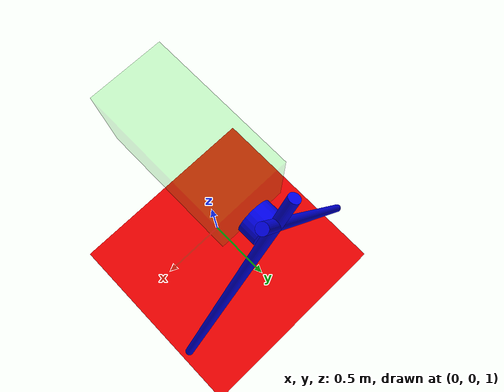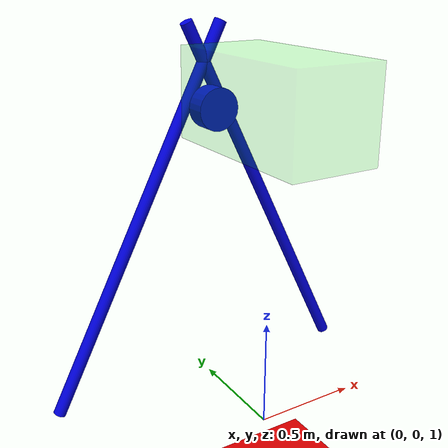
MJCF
<mujoco model='xz'>
    <option timestep="0.001" integrator="RK4" gravity='0 0 0'>
		<flag sensornoise="enable" contact="disable" energy="enable"/>
	</option>
    <worldbody>
    <light diffuse=".5 .5 .5" pos="0 0 3" dir="0 0 -1"/>
		<geom type="plane" size="1 1 0.1" rgba=".9 0 0 1"/>
		<body name='base' pos="0 0 2.5" euler="0 0 0">
			<geom type="box" size="0.2 0.4 0.2" rgba="0 .9 0 0.2" />
			<inertial mass="1" pos="0 0 0" diaginertia="0.1 0.1 0.1"/>
			<body name="zc" pos="0 0.46 -0.1" euler="-90 0 0">
				<joint name="zc" type="hinge" pos="0 0 0" axis="0 0 1" />
				<geom type="cylinder" size="0.1 0.05" rgba="0 0 0.9 1" />
				<inertial mass="1" pos="0 0 0" diaginertia="0.1 0.1 0.1"/>
			</body>
            <body pos="0 0.55 0.1" euler="0 0 0">
				<inertial mass="0.1" pos="0 0 0" diaginertia="0.1 0.1 0.1"/>
                <joint name="pin1_r" type="hinge" pos="0 0 0" axis="0 1 0"/>
                <body name="pin1" pos="0 0 0" euler="0 26.57 0">
                    <joint name="pin1_z" type="slide" pos="0 0 0" axis="0 0 1" />
                    <geom type="cylinder" pos="0 0 -0.8" size="0.03 1" rgba="0 0 0.9 1" />
                    <inertial mass="1" pos="0 0 0" diaginertia="0.1 0.1 0.1"/>
                </body>
            </body>
            <body pos="0 0.55 0.1" euler="0 0 0">
				<inertial mass="0.1" pos="0 0 0" diaginertia="0.1 0.1 0.1"/>
                <joint name="pin2_r" type="hinge" pos="0 0 0" axis="0 1 0"/>
                <body name="pin2" pos="0 0 0" euler="0 -26.57 0">
                    <joint name="pin2_z" type="slide" pos="0 0 0" axis="0 0 1" />
                    <geom type="cylinder" pos="0 0 -0.8" size="0.03 1" rgba="0 0 0.9 1" />
                    <inertial mass="1" pos="0 0 0" diaginertia="0.1 0.1 0.1"/>
                </body>
            </body>
		</body>
	</worldbody>

  <equality>
    <connect body1='zc'  body2='pin1'        anchor='-0.1 0 0'/>
    <connect body1='zc'  body2='pin2'        anchor='0.1 0 0'/>
  </equality>

    <actuator>
        <motor name="torque1" joint="zc" gear="1" ctrlrange="-1 1" ctrllimited="true"/>
    </actuator>
</mujoco>
